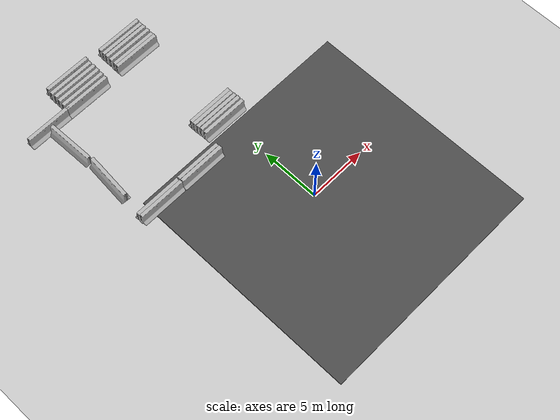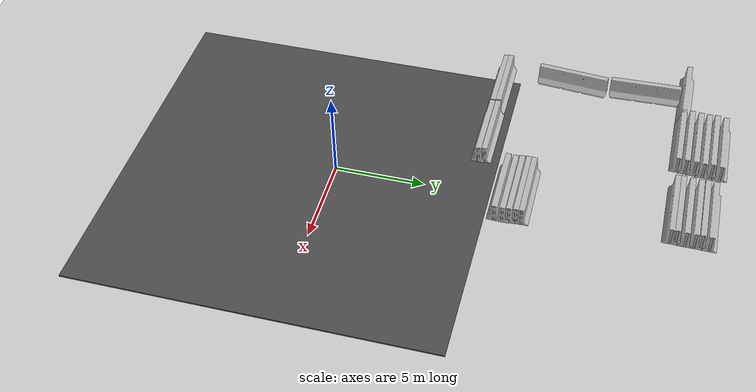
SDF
<sdf version="1.6">
 <world name="default">
  <model name="ground_plane">
   <static>1</static>
   <link name="link">
    <collision name="collision">
     <geometry><plane><normal>0 0 1</normal><size>100 100</size></plane></geometry>
     <surface><friction><ode><mu>100</mu><mu2>50</mu2></ode></friction></surface>
    </collision>
    <visual name="visual">
     <cast_shadows>0</cast_shadows>
     <geometry><plane><normal>0 0 1</normal><size>100 100</size></plane></geometry>
     <material>
      <script><uri>file://media/materials/scripts/gazebo.material</uri><name>Gazebo/Grey</name></script>
     </material>
    </visual>
   </link>
  </model>
  <model name="asphalt_plane">
   <static>1</static>
   <link name="link">
    <collision name="collision"><geometry><box><size>20 20 0.1</size></box></geometry></collision>
    <visual name="visual">
     <cast_shadows>0</cast_shadows>
     <geometry><box><size>20 20 0.1</size></box></geometry>
     <material>
      <script>
       <uri>model://asphalt_plane/materials/scripts</uri>
       <uri>model://asphalt_plane/materials/textures</uri>
       <name>vrc/asphalt</name>
      </script>
     </material>
    </visual>
   </link>
   <pose>0.654583 -1.36411 0 0 -0 0</pose>
  </model>
  <model name="jersey_barrier">
   <static>1</static>
   <link name="link">
    <visual name="visual">
     <geometry><mesh><uri>model://jersey_barrier/meshes/jersey_barrier.dae</uri></mesh></geometry>
    </visual>
    <collision name="upright">
     <pose>0 0 0.5715 0 -0 0</pose>
     <geometry><box><size>4.06542 0.3063 1.143</size></box></geometry>
    </collision>
    <collision name="base">
     <pose>0 0 0.032258 0 -0 0</pose>
     <geometry><box><size>4.06542 0.8107 0.064516</size></box></geometry>
    </collision>
    <collision name="base2">
     <pose>0 0 0.1 0 -0 0</pose>
     <geometry><box><size>4.06542 0.65 0.1</size></box></geometry>
    </collision>
    <collision name="base3">
     <pose>0 0 0.2 0 -0 0</pose>
     <geometry><box><size>4.06542 0.5 0.1</size></box></geometry>
    </collision>
    <collision name="left-angle">
     <pose>0 -0.224 0.2401 0.9 -0 0</pose>
     <geometry><box><size>4.06542 0.5 0.064516</size></box></geometry>
    </collision>
    <collision name="right-angle">
     <pose>0 0.224 0.2401 -0.9 0 0</pose>
     <geometry><box><size>4.06542 0.5 0.064516</size></box></geometry>
    </collision>
   </link>
   <pose>-4.36769 7.48997 0 0 -0 0</pose>
  </model>
  <model name="jersey_barrier_2">
   <static>1</static>
   <link name="link">
    <visual name="visual">
     <geometry><mesh><uri>model://jersey_barrier/meshes/jersey_barrier.dae</uri></mesh></geometry>
    </visual>
    <collision name="upright">
     <pose>0 0 0.5715 0 -0 0</pose>
     <geometry><box><size>4.06542 0.3063 1.143</size></box></geometry>
    </collision>
    <collision name="base">
     <pose>0 0 0.032258 0 -0 0</pose>
     <geometry><box><size>4.06542 0.8107 0.064516</size></box></geometry>
    </collision>
    <collision name="base2">
     <pose>0 0 0.1 0 -0 0</pose>
     <geometry><box><size>4.06542 0.65 0.1</size></box></geometry>
    </collision>
    <collision name="base3">
     <pose>0 0 0.2 0 -0 0</pose>
     <geometry><box><size>4.06542 0.5 0.1</size></box></geometry>
    </collision>
    <collision name="left-angle">
     <pose>0 -0.224 0.2401 0.9 -0 0</pose>
     <geometry><box><size>4.06542 0.5 0.064516</size></box></geometry>
    </collision>
    <collision name="right-angle">
     <pose>0 0.224 0.2401 -0.9 0 0</pose>
     <geometry><box><size>4.06542 0.5 0.064516</size></box></geometry>
    </collision>
   </link>
   <pose>-4.40118 7.807 0 0 -0 0</pose>
  </model>
  <model name="jersey_barrier_7">
   <static>1</static>
   <link name="link">
    <visual name="visual">
     <geometry><mesh><uri>model://jersey_barrier/meshes/jersey_barrier.dae</uri></mesh></geometry>
    </visual>
    <collision name="upright">
     <pose>0 0 0.5715 0 -0 0</pose>
     <geometry><box><size>4.06542 0.3063 1.143</size></box></geometry>
    </collision>
    <collision name="base">
     <pose>0 0 0.032258 0 -0 0</pose>
     <geometry><box><size>4.06542 0.8107 0.064516</size></box></geometry>
    </collision>
    <collision name="base2">
     <pose>0 0 0.1 0 -0 0</pose>
     <geometry><box><size>4.06542 0.65 0.1</size></box></geometry>
    </collision>
    <collision name="base3">
     <pose>0 0 0.2 0 -0 0</pose>
     <geometry><box><size>4.06542 0.5 0.1</size></box></geometry>
    </collision>
    <collision name="left-angle">
     <pose>0 -0.224 0.2401 0.9 -0 0</pose>
     <geometry><box><size>4.06542 0.5 0.064516</size></box></geometry>
    </collision>
    <collision name="right-angle">
     <pose>0 0.224 0.2401 -0.9 0 0</pose>
     <geometry><box><size>4.06542 0.5 0.064516</size></box></geometry>
    </collision>
   </link>
   <pose>-8.4538 7.51993 0 0 -0 0</pose>
  </model>
  <model name="jersey_barrier_8">
   <static>1</static>
   <link name="link">
    <visual name="visual">
     <geometry><mesh><uri>model://jersey_barrier/meshes/jersey_barrier.dae</uri></mesh></geometry>
    </visual>
    <collision name="upright">
     <pose>0 0 0.5715 0 -0 0</pose>
     <geometry><box><size>4.06542 0.3063 1.143</size></box></geometry>
    </collision>
    <collision name="base">
     <pose>0 0 0.032258 0 -0 0</pose>
     <geometry><box><size>4.06542 0.8107 0.064516</size></box></geometry>
    </collision>
    <collision name="base2">
     <pose>0 0 0.1 0 -0 0</pose>
     <geometry><box><size>4.06542 0.65 0.1</size></box></geometry>
    </collision>
    <collision name="base3">
     <pose>0 0 0.2 0 -0 0</pose>
     <geometry><box><size>4.06542 0.5 0.1</size></box></geometry>
    </collision>
    <collision name="left-angle">
     <pose>0 -0.224 0.2401 0.9 -0 0</pose>
     <geometry><box><size>4.06542 0.5 0.064516</size></box></geometry>
    </collision>
    <collision name="right-angle">
     <pose>0 0.224 0.2401 -0.9 0 0</pose>
     <geometry><box><size>4.06542 0.5 0.064516</size></box></geometry>
    </collision>
   </link>
   <pose>-8.51175 7.78979 0 0 -0 0</pose>
  </model>
  <model name="jersey_barrier_17">
   <static>1</static>
   <link name="link">
    <visual name="visual">
     <geometry><mesh><uri>model://jersey_barrier/meshes/jersey_barrier.dae</uri></mesh></geometry>
    </visual>
    <collision name="upright">
     <pose>0 0 0.5715 0 -0 0</pose>
     <geometry><box><size>4.06542 0.3063 1.143</size></box></geometry>
    </collision>
    <collision name="base">
     <pose>0 0 0.032258 0 -0 0</pose>
     <geometry><box><size>4.06542 0.8107 0.064516</size></box></geometry>
    </collision>
    <collision name="base2">
     <pose>0 0 0.1 0 -0 0</pose>
     <geometry><box><size>4.06542 0.65 0.1</size></box></geometry>
    </collision>
    <collision name="base3">
     <pose>0 0 0.2 0 -0 0</pose>
     <geometry><box><size>4.06542 0.5 0.1</size></box></geometry>
    </collision>
    <collision name="left-angle">
     <pose>0 -0.224 0.2401 0.9 -0 0</pose>
     <geometry><box><size>4.06542 0.5 0.064516</size></box></geometry>
    </collision>
    <collision name="right-angle">
     <pose>0 0.224 0.2401 -0.9 0 0</pose>
     <geometry><box><size>4.06542 0.5 0.064516</size></box></geometry>
    </collision>
   </link>
   <pose>-0.318637 9.6023 0 0 -0 0</pose>
  </model>
  <model name="jersey_barrier_19">
   <static>1</static>
   <link name="link">
    <visual name="visual">
     <geometry><mesh><uri>model://jersey_barrier/meshes/jersey_barrier.dae</uri></mesh></geometry>
    </visual>
    <collision name="upright">
     <pose>0 0 0.5715 0 -0 0</pose>
     <geometry><box><size>4.06542 0.3063 1.143</size></box></geometry>
    </collision>
    <collision name="base">
     <pose>0 0 0.032258 0 -0 0</pose>
     <geometry><box><size>4.06542 0.8107 0.064516</size></box></geometry>
    </collision>
    <collision name="base2">
     <pose>0 0 0.1 0 -0 0</pose>
     <geometry><box><size>4.06542 0.65 0.1</size></box></geometry>
    </collision>
    <collision name="base3">
     <pose>0 0 0.2 0 -0 0</pose>
     <geometry><box><size>4.06542 0.5 0.1</size></box></geometry>
    </collision>
    <collision name="left-angle">
     <pose>0 -0.224 0.2401 0.9 -0 0</pose>
     <geometry><box><size>4.06542 0.5 0.064516</size></box></geometry>
    </collision>
    <collision name="right-angle">
     <pose>0 0.224 0.2401 -0.9 0 0</pose>
     <geometry><box><size>4.06542 0.5 0.064516</size></box></geometry>
    </collision>
   </link>
   <pose>-0.337007 9.18131 0 0 -0 0</pose>
  </model>
  <model name="jersey_barrier_21">
   <static>1</static>
   <link name="link">
    <visual name="visual">
     <geometry><mesh><uri>model://jersey_barrier/meshes/jersey_barrier.dae</uri></mesh></geometry>
    </visual>
    <collision name="upright">
     <pose>0 0 0.5715 0 -0 0</pose>
     <geometry><box><size>4.06542 0.3063 1.143</size></box></geometry>
    </collision>
    <collision name="base">
     <pose>0 0 0.032258 0 -0 0</pose>
     <geometry><box><size>4.06542 0.8107 0.064516</size></box></geometry>
    </collision>
    <collision name="base2">
     <pose>0 0 0.1 0 -0 0</pose>
     <geometry><box><size>4.06542 0.65 0.1</size></box></geometry>
    </collision>
    <collision name="base3">
     <pose>0 0 0.2 0 -0 0</pose>
     <geometry><box><size>4.06542 0.5 0.1</size></box></geometry>
    </collision>
    <collision name="left-angle">
     <pose>0 -0.224 0.2401 0.9 -0 0</pose>
     <geometry><box><size>4.06542 0.5 0.064516</size></box></geometry>
    </collision>
    <collision name="right-angle">
     <pose>0 0.224 0.2401 -0.9 0 0</pose>
     <geometry><box><size>4.06542 0.5 0.064516</size></box></geometry>
    </collision>
   </link>
   <pose>-0.357473 9.94832 0 0 -0 0</pose>
  </model>
  <model name="jersey_barrier_23">
   <static>1</static>
   <link name="link">
    <visual name="visual">
     <geometry><mesh><uri>model://jersey_barrier/meshes/jersey_barrier.dae</uri></mesh></geometry>
    </visual>
    <collision name="upright">
     <pose>0 0 0.5715 0 -0 0</pose>
     <geometry><box><size>4.06542 0.3063 1.143</size></box></geometry>
    </collision>
    <collision name="base">
     <pose>0 0 0.032258 0 -0 0</pose>
     <geometry><box><size>4.06542 0.8107 0.064516</size></box></geometry>
    </collision>
    <collision name="base2">
     <pose>0 0 0.1 0 -0 0</pose>
     <geometry><box><size>4.06542 0.65 0.1</size></box></geometry>
    </collision>
    <collision name="base3">
     <pose>0 0 0.2 0 -0 0</pose>
     <geometry><box><size>4.06542 0.5 0.1</size></box></geometry>
    </collision>
    <collision name="left-angle">
     <pose>0 -0.224 0.2401 0.9 -0 0</pose>
     <geometry><box><size>4.06542 0.5 0.064516</size></box></geometry>
    </collision>
    <collision name="right-angle">
     <pose>0 0.224 0.2401 -0.9 0 0</pose>
     <geometry><box><size>4.06542 0.5 0.064516</size></box></geometry>
    </collision>
   </link>
   <pose>-0.388301 10.31 0 0 -0 0</pose>
  </model>
  <model name="jersey_barrier_25">
   <static>1</static>
   <link name="link">
    <visual name="visual">
     <geometry><mesh><uri>model://jersey_barrier/meshes/jersey_barrier.dae</uri></mesh></geometry>
    </visual>
    <collision name="upright">
     <pose>0 0 0.5715 0 -0 0</pose>
     <geometry><box><size>4.06542 0.3063 1.143</size></box></geometry>
    </collision>
    <collision name="base">
     <pose>0 0 0.032258 0 -0 0</pose>
     <geometry><box><size>4.06542 0.8107 0.064516</size></box></geometry>
    </collision>
    <collision name="base2">
     <pose>0 0 0.1 0 -0 0</pose>
     <geometry><box><size>4.06542 0.65 0.1</size></box></geometry>
    </collision>
    <collision name="base3">
     <pose>0 0 0.2 0 -0 0</pose>
     <geometry><box><size>4.06542 0.5 0.1</size></box></geometry>
    </collision>
    <collision name="left-angle">
     <pose>0 -0.224 0.2401 0.9 -0 0</pose>
     <geometry><box><size>4.06542 0.5 0.064516</size></box></geometry>
    </collision>
    <collision name="right-angle">
     <pose>0 0.224 0.2401 -0.9 0 0</pose>
     <geometry><box><size>4.06542 0.5 0.064516</size></box></geometry>
    </collision>
   </link>
   <pose>-0.384701 10.6128 0 0 -0 0</pose>
  </model>
  <model name="jersey_barrier_29">
   <static>1</static>
   <link name="link">
    <visual name="visual">
     <geometry><mesh><uri>model://jersey_barrier/meshes/jersey_barrier.dae</uri></mesh></geometry>
    </visual>
    <collision name="upright">
     <pose>0 0 0.5715 0 -0 0</pose>
     <geometry><box><size>4.06542 0.3063 1.143</size></box></geometry>
    </collision>
    <collision name="base">
     <pose>0 0 0.032258 0 -0 0</pose>
     <geometry><box><size>4.06542 0.8107 0.064516</size></box></geometry>
    </collision>
    <collision name="base2">
     <pose>0 0 0.1 0 -0 0</pose>
     <geometry><box><size>4.06542 0.65 0.1</size></box></geometry>
    </collision>
    <collision name="base3">
     <pose>0 0 0.2 0 -0 0</pose>
     <geometry><box><size>4.06542 0.5 0.1</size></box></geometry>
    </collision>
    <collision name="left-angle">
     <pose>0 -0.224 0.2401 0.9 -0 0</pose>
     <geometry><box><size>4.06542 0.5 0.064516</size></box></geometry>
    </collision>
    <collision name="right-angle">
     <pose>0 0.224 0.2401 -0.9 0 0</pose>
     <geometry><box><size>4.06542 0.5 0.064516</size></box></geometry>
    </collision>
   </link>
   <pose>-0.950363 18.3191 0 0 -0 0</pose>
  </model>
  <model name="jersey_barrier_30">
   <static>1</static>
   <link name="link">
    <visual name="visual">
     <geometry><mesh><uri>model://jersey_barrier/meshes/jersey_barrier.dae</uri></mesh></geometry>
    </visual>
    <collision name="upright">
     <pose>0 0 0.5715 0 -0 0</pose>
     <geometry><box><size>4.06542 0.3063 1.143</size></box></geometry>
    </collision>
    <collision name="base">
     <pose>0 0 0.032258 0 -0 0</pose>
     <geometry><box><size>4.06542 0.8107 0.064516</size></box></geometry>
    </collision>
    <collision name="base2">
     <pose>0 0 0.1 0 -0 0</pose>
     <geometry><box><size>4.06542 0.65 0.1</size></box></geometry>
    </collision>
    <collision name="base3">
     <pose>0 0 0.2 0 -0 0</pose>
     <geometry><box><size>4.06542 0.5 0.1</size></box></geometry>
    </collision>
    <collision name="left-angle">
     <pose>0 -0.224 0.2401 0.9 -0 0</pose>
     <geometry><box><size>4.06542 0.5 0.064516</size></box></geometry>
    </collision>
    <collision name="right-angle">
     <pose>0 0.224 0.2401 -0.9 0 0</pose>
     <geometry><box><size>4.06542 0.5 0.064516</size></box></geometry>
    </collision>
   </link>
   <pose>-6.23818 18.2248 0 0 -0 0</pose>
  </model>
  <model name="jersey_barrier_31">
   <static>1</static>
   <link name="link">
    <visual name="visual">
     <geometry><mesh><uri>model://jersey_barrier/meshes/jersey_barrier.dae</uri></mesh></geometry>
    </visual>
    <collision name="upright">
     <pose>0 0 0.5715 0 -0 0</pose>
     <geometry><box><size>4.06542 0.3063 1.143</size></box></geometry>
    </collision>
    <collision name="base">
     <pose>0 0 0.032258 0 -0 0</pose>
     <geometry><box><size>4.06542 0.8107 0.064516</size></box></geometry>
    </collision>
    <collision name="base2">
     <pose>0 0 0.1 0 -0 0</pose>
     <geometry><box><size>4.06542 0.65 0.1</size></box></geometry>
    </collision>
    <collision name="base3">
     <pose>0 0 0.2 0 -0 0</pose>
     <geometry><box><size>4.06542 0.5 0.1</size></box></geometry>
    </collision>
    <collision name="left-angle">
     <pose>0 -0.224 0.2401 0.9 -0 0</pose>
     <geometry><box><size>4.06542 0.5 0.064516</size></box></geometry>
    </collision>
    <collision name="right-angle">
     <pose>0 0.224 0.2401 -0.9 0 0</pose>
     <geometry><box><size>4.06542 0.5 0.064516</size></box></geometry>
    </collision>
   </link>
   <pose>-10.0182 18.2373 0 0 -0 0</pose>
  </model>
  <model name="jersey_barrier_32">
   <static>1</static>
   <link name="link">
    <visual name="visual">
     <geometry><mesh><uri>model://jersey_barrier/meshes/jersey_barrier.dae</uri></mesh></geometry>
    </visual>
    <collision name="upright">
     <pose>0 0 0.5715 0 -0 0</pose>
     <geometry><box><size>4.06542 0.3063 1.143</size></box></geometry>
    </collision>
    <collision name="base">
     <pose>0 0 0.032258 0 -0 0</pose>
     <geometry><box><size>4.06542 0.8107 0.064516</size></box></geometry>
    </collision>
    <collision name="base2">
     <pose>0 0 0.1 0 -0 0</pose>
     <geometry><box><size>4.06542 0.65 0.1</size></box></geometry>
    </collision>
    <collision name="base3">
     <pose>0 0 0.2 0 -0 0</pose>
     <geometry><box><size>4.06542 0.5 0.1</size></box></geometry>
    </collision>
    <collision name="left-angle">
     <pose>0 -0.224 0.2401 0.9 -0 0</pose>
     <geometry><box><size>4.06542 0.5 0.064516</size></box></geometry>
    </collision>
    <collision name="right-angle">
     <pose>0 0.224 0.2401 -0.9 0 0</pose>
     <geometry><box><size>4.06542 0.5 0.064516</size></box></geometry>
    </collision>
   </link>
   <pose>-6.20552 18.6845 0 0 -0 0</pose>
  </model>
  <model name="jersey_barrier_33">
   <static>1</static>
   <link name="link">
    <visual name="visual">
     <geometry><mesh><uri>model://jersey_barrier/meshes/jersey_barrier.dae</uri></mesh></geometry>
    </visual>
    <collision name="upright">
     <pose>0 0 0.5715 0 -0 0</pose>
     <geometry><box><size>4.06542 0.3063 1.143</size></box></geometry>
    </collision>
    <collision name="base">
     <pose>0 0 0.032258 0 -0 0</pose>
     <geometry><box><size>4.06542 0.8107 0.064516</size></box></geometry>
    </collision>
    <collision name="base2">
     <pose>0 0 0.1 0 -0 0</pose>
     <geometry><box><size>4.06542 0.65 0.1</size></box></geometry>
    </collision>
    <collision name="base3">
     <pose>0 0 0.2 0 -0 0</pose>
     <geometry><box><size>4.06542 0.5 0.1</size></box></geometry>
    </collision>
    <collision name="left-angle">
     <pose>0 -0.224 0.2401 0.9 -0 0</pose>
     <geometry><box><size>4.06542 0.5 0.064516</size></box></geometry>
    </collision>
    <collision name="right-angle">
     <pose>0 0.224 0.2401 -0.9 0 0</pose>
     <geometry><box><size>4.06542 0.5 0.064516</size></box></geometry>
    </collision>
   </link>
   <pose>-0.961158 18.6061 0 0 -0 0</pose>
  </model>
  <model name="jersey_barrier_34">
   <static>1</static>
   <link name="link">
    <visual name="visual">
     <geometry><mesh><uri>model://jersey_barrier/meshes/jersey_barrier.dae</uri></mesh></geometry>
    </visual>
    <collision name="upright">
     <pose>0 0 0.5715 0 -0 0</pose>
     <geometry><box><size>4.06542 0.3063 1.143</size></box></geometry>
    </collision>
    <collision name="base">
     <pose>0 0 0.032258 0 -0 0</pose>
     <geometry><box><size>4.06542 0.8107 0.064516</size></box></geometry>
    </collision>
    <collision name="base2">
     <pose>0 0 0.1 0 -0 0</pose>
     <geometry><box><size>4.06542 0.65 0.1</size></box></geometry>
    </collision>
    <collision name="base3">
     <pose>0 0 0.2 0 -0 0</pose>
     <geometry><box><size>4.06542 0.5 0.1</size></box></geometry>
    </collision>
    <collision name="left-angle">
     <pose>0 -0.224 0.2401 0.9 -0 0</pose>
     <geometry><box><size>4.06542 0.5 0.064516</size></box></geometry>
    </collision>
    <collision name="right-angle">
     <pose>0 0.224 0.2401 -0.9 0 0</pose>
     <geometry><box><size>4.06542 0.5 0.064516</size></box></geometry>
    </collision>
   </link>
   <pose>-6.17795 19.1736 0 0 -0 0</pose>
  </model>
  <model name="jersey_barrier_35">
   <static>1</static>
   <link name="link">
    <visual name="visual">
     <geometry><mesh><uri>model://jersey_barrier/meshes/jersey_barrier.dae</uri></mesh></geometry>
    </visual>
    <collision name="upright">
     <pose>0 0 0.5715 0 -0 0</pose>
     <geometry><box><size>4.06542 0.3063 1.143</size></box></geometry>
    </collision>
    <collision name="base">
     <pose>0 0 0.032258 0 -0 0</pose>
     <geometry><box><size>4.06542 0.8107 0.064516</size></box></geometry>
    </collision>
    <collision name="base2">
     <pose>0 0 0.1 0 -0 0</pose>
     <geometry><box><size>4.06542 0.65 0.1</size></box></geometry>
    </collision>
    <collision name="base3">
     <pose>0 0 0.2 0 -0 0</pose>
     <geometry><box><size>4.06542 0.5 0.1</size></box></geometry>
    </collision>
    <collision name="left-angle">
     <pose>0 -0.224 0.2401 0.9 -0 0</pose>
     <geometry><box><size>4.06542 0.5 0.064516</size></box></geometry>
    </collision>
    <collision name="right-angle">
     <pose>0 0.224 0.2401 -0.9 0 0</pose>
     <geometry><box><size>4.06542 0.5 0.064516</size></box></geometry>
    </collision>
   </link>
   <pose>-0.928461 19.0932 0 0 -0 0</pose>
  </model>
  <model name="jersey_barrier_36">
   <static>1</static>
   <link name="link">
    <visual name="visual">
     <geometry><mesh><uri>model://jersey_barrier/meshes/jersey_barrier.dae</uri></mesh></geometry>
    </visual>
    <collision name="upright">
     <pose>0 0 0.5715 0 -0 0</pose>
     <geometry><box><size>4.06542 0.3063 1.143</size></box></geometry>
    </collision>
    <collision name="base">
     <pose>0 0 0.032258 0 -0 0</pose>
     <geometry><box><size>4.06542 0.8107 0.064516</size></box></geometry>
    </collision>
    <collision name="base2">
     <pose>0 0 0.1 0 -0 0</pose>
     <geometry><box><size>4.06542 0.65 0.1</size></box></geometry>
    </collision>
    <collision name="base3">
     <pose>0 0 0.2 0 -0 0</pose>
     <geometry><box><size>4.06542 0.5 0.1</size></box></geometry>
    </collision>
    <collision name="left-angle">
     <pose>0 -0.224 0.2401 0.9 -0 0</pose>
     <geometry><box><size>4.06542 0.5 0.064516</size></box></geometry>
    </collision>
    <collision name="right-angle">
     <pose>0 0.224 0.2401 -0.9 0 0</pose>
     <geometry><box><size>4.06542 0.5 0.064516</size></box></geometry>
    </collision>
   </link>
   <pose>-6.14075 19.6399 0 0 -0 0</pose>
  </model>
  <model name="jersey_barrier_37">
   <static>1</static>
   <link name="link">
    <visual name="visual">
     <geometry><mesh><uri>model://jersey_barrier/meshes/jersey_barrier.dae</uri></mesh></geometry>
    </visual>
    <collision name="upright">
     <pose>0 0 0.5715 0 -0 0</pose>
     <geometry><box><size>4.06542 0.3063 1.143</size></box></geometry>
    </collision>
    <collision name="base">
     <pose>0 0 0.032258 0 -0 0</pose>
     <geometry><box><size>4.06542 0.8107 0.064516</size></box></geometry>
    </collision>
    <collision name="base2">
     <pose>0 0 0.1 0 -0 0</pose>
     <geometry><box><size>4.06542 0.65 0.1</size></box></geometry>
    </collision>
    <collision name="base3">
     <pose>0 0 0.2 0 -0 0</pose>
     <geometry><box><size>4.06542 0.5 0.1</size></box></geometry>
    </collision>
    <collision name="left-angle">
     <pose>0 -0.224 0.2401 0.9 -0 0</pose>
     <geometry><box><size>4.06542 0.5 0.064516</size></box></geometry>
    </collision>
    <collision name="right-angle">
     <pose>0 0.224 0.2401 -0.9 0 0</pose>
     <geometry><box><size>4.06542 0.5 0.064516</size></box></geometry>
    </collision>
   </link>
   <pose>-0.928652 19.5638 0 0 -0 0</pose>
  </model>
  <model name="jersey_barrier_38">
   <static>1</static>
   <link name="link">
    <visual name="visual">
     <geometry><mesh><uri>model://jersey_barrier/meshes/jersey_barrier.dae</uri></mesh></geometry>
    </visual>
    <collision name="upright">
     <pose>0 0 0.5715 0 -0 0</pose>
     <geometry><box><size>4.06542 0.3063 1.143</size></box></geometry>
    </collision>
    <collision name="base">
     <pose>0 0 0.032258 0 -0 0</pose>
     <geometry><box><size>4.06542 0.8107 0.064516</size></box></geometry>
    </collision>
    <collision name="base2">
     <pose>0 0 0.1 0 -0 0</pose>
     <geometry><box><size>4.06542 0.65 0.1</size></box></geometry>
    </collision>
    <collision name="base3">
     <pose>0 0 0.2 0 -0 0</pose>
     <geometry><box><size>4.06542 0.5 0.1</size></box></geometry>
    </collision>
    <collision name="left-angle">
     <pose>0 -0.224 0.2401 0.9 -0 0</pose>
     <geometry><box><size>4.06542 0.5 0.064516</size></box></geometry>
    </collision>
    <collision name="right-angle">
     <pose>0 0.224 0.2401 -0.9 0 0</pose>
     <geometry><box><size>4.06542 0.5 0.064516</size></box></geometry>
    </collision>
   </link>
   <pose>-6.17557 20.082 0 0 -0 0</pose>
  </model>
  <model name="jersey_barrier_39">
   <static>1</static>
   <link name="link">
    <visual name="visual">
     <geometry><mesh><uri>model://jersey_barrier/meshes/jersey_barrier.dae</uri></mesh></geometry>
    </visual>
    <collision name="upright">
     <pose>0 0 0.5715 0 -0 0</pose>
     <geometry><box><size>4.06542 0.3063 1.143</size></box></geometry>
    </collision>
    <collision name="base">
     <pose>0 0 0.032258 0 -0 0</pose>
     <geometry><box><size>4.06542 0.8107 0.064516</size></box></geometry>
    </collision>
    <collision name="base2">
     <pose>0 0 0.1 0 -0 0</pose>
     <geometry><box><size>4.06542 0.65 0.1</size></box></geometry>
    </collision>
    <collision name="base3">
     <pose>0 0 0.2 0 -0 0</pose>
     <geometry><box><size>4.06542 0.5 0.1</size></box></geometry>
    </collision>
    <collision name="left-angle">
     <pose>0 -0.224 0.2401 0.9 -0 0</pose>
     <geometry><box><size>4.06542 0.5 0.064516</size></box></geometry>
    </collision>
    <collision name="right-angle">
     <pose>0 0.224 0.2401 -0.9 0 0</pose>
     <geometry><box><size>4.06542 0.5 0.064516</size></box></geometry>
    </collision>
   </link>
   <pose>-0.946103 19.9088 0 0 -0 0</pose>
  </model>
  <model name="jersey_barrier_40">
   <static>1</static>
   <link name="link">
    <visual name="visual">
     <geometry><mesh><uri>model://jersey_barrier/meshes/jersey_barrier.dae</uri></mesh></geometry>
    </visual>
    <collision name="upright">
     <pose>0 0 0.5715 0 -0 0</pose>
     <geometry><box><size>4.06542 0.3063 1.143</size></box></geometry>
    </collision>
    <collision name="base">
     <pose>0 0 0.032258 0 -0 0</pose>
     <geometry><box><size>4.06542 0.8107 0.064516</size></box></geometry>
    </collision>
    <collision name="base2">
     <pose>0 0 0.1 0 -0 0</pose>
     <geometry><box><size>4.06542 0.65 0.1</size></box></geometry>
    </collision>
    <collision name="base3">
     <pose>0 0 0.2 0 -0 0</pose>
     <geometry><box><size>4.06542 0.5 0.1</size></box></geometry>
    </collision>
    <collision name="left-angle">
     <pose>0 -0.224 0.2401 0.9 -0 0</pose>
     <geometry><box><size>4.06542 0.5 0.064516</size></box></geometry>
    </collision>
    <collision name="right-angle">
     <pose>0 0.224 0.2401 -0.9 0 0</pose>
     <geometry><box><size>4.06542 0.5 0.064516</size></box></geometry>
    </collision>
   </link>
   <pose>-0.907826 20.3386 0 0 -0 0</pose>
  </model>
  <model name="jersey_barrier_41">
   <static>1</static>
   <link name="link">
    <visual name="visual">
     <geometry><mesh><uri>model://jersey_barrier/meshes/jersey_barrier.dae</uri></mesh></geometry>
    </visual>
    <collision name="upright">
     <pose>0 0 0.5715 0 -0 0</pose>
     <geometry><box><size>4.06542 0.3063 1.143</size></box></geometry>
    </collision>
    <collision name="base">
     <pose>0 0 0.032258 0 -0 0</pose>
     <geometry><box><size>4.06542 0.8107 0.064516</size></box></geometry>
    </collision>
    <collision name="base2">
     <pose>0 0 0.1 0 -0 0</pose>
     <geometry><box><size>4.06542 0.65 0.1</size></box></geometry>
    </collision>
    <collision name="base3">
     <pose>0 0 0.2 0 -0 0</pose>
     <geometry><box><size>4.06542 0.5 0.1</size></box></geometry>
    </collision>
    <collision name="left-angle">
     <pose>0 -0.224 0.2401 0.9 -0 0</pose>
     <geometry><box><size>4.06542 0.5 0.064516</size></box></geometry>
    </collision>
    <collision name="right-angle">
     <pose>0 0.224 0.2401 -0.9 0 0</pose>
     <geometry><box><size>4.06542 0.5 0.064516</size></box></geometry>
    </collision>
   </link>
   <pose>-6.10389 20.5676 0 0 -0 0</pose>
  </model>
  <model name="jersey_barrier_42">
   <static>1</static>
   <link name="link">
    <visual name="visual">
     <geometry><mesh><uri>model://jersey_barrier/meshes/jersey_barrier.dae</uri></mesh></geometry>
    </visual>
    <collision name="upright">
     <pose>0 0 0.5715 0 -0 0</pose>
     <geometry><box><size>4.06542 0.3063 1.143</size></box></geometry>
    </collision>
    <collision name="base">
     <pose>0 0 0.032258 0 -0 0</pose>
     <geometry><box><size>4.06542 0.8107 0.064516</size></box></geometry>
    </collision>
    <collision name="base2">
     <pose>0 0 0.1 0 -0 0</pose>
     <geometry><box><size>4.06542 0.65 0.1</size></box></geometry>
    </collision>
    <collision name="base3">
     <pose>0 0 0.2 0 -0 0</pose>
     <geometry><box><size>4.06542 0.5 0.1</size></box></geometry>
    </collision>
    <collision name="left-angle">
     <pose>0 -0.224 0.2401 0.9 -0 0</pose>
     <geometry><box><size>4.06542 0.5 0.064516</size></box></geometry>
    </collision>
    <collision name="right-angle">
     <pose>0 0.224 0.2401 -0.9 0 0</pose>
     <geometry><box><size>4.06542 0.5 0.064516</size></box></geometry>
    </collision>
   </link>
   <pose>-9.95139 15.886 0 0 -0 1.6017</pose>
  </model>
  <model name="jersey_barrier_45">
   <static>1</static>
   <link name="link">
    <visual name="visual">
     <geometry><mesh><uri>model://jersey_barrier/meshes/jersey_barrier.dae</uri></mesh></geometry>
    </visual>
    <collision name="upright">
     <pose>0 0 0.5715 0 -0 0</pose>
     <geometry><box><size>4.06542 0.3063 1.143</size></box></geometry>
    </collision>
    <collision name="base">
     <pose>0 0 0.032258 0 -0 0</pose>
     <geometry><box><size>4.06542 0.8107 0.064516</size></box></geometry>
    </collision>
    <collision name="base2">
     <pose>0 0 0.1 0 -0 0</pose>
     <geometry><box><size>4.06542 0.65 0.1</size></box></geometry>
    </collision>
    <collision name="base3">
     <pose>0 0 0.2 0 -0 0</pose>
     <geometry><box><size>4.06542 0.5 0.1</size></box></geometry>
    </collision>
    <collision name="left-angle">
     <pose>0 -0.224 0.2401 0.9 -0 0</pose>
     <geometry><box><size>4.06542 0.5 0.064516</size></box></geometry>
    </collision>
    <collision name="right-angle">
     <pose>0 0.224 0.2401 -0.9 0 0</pose>
     <geometry><box><size>4.06542 0.5 0.064516</size></box></geometry>
    </collision>
   </link>
   <pose>-9.92177 11.6519 0 0 -0 1.48758</pose>
  </model>
 </world>
</sdf>
